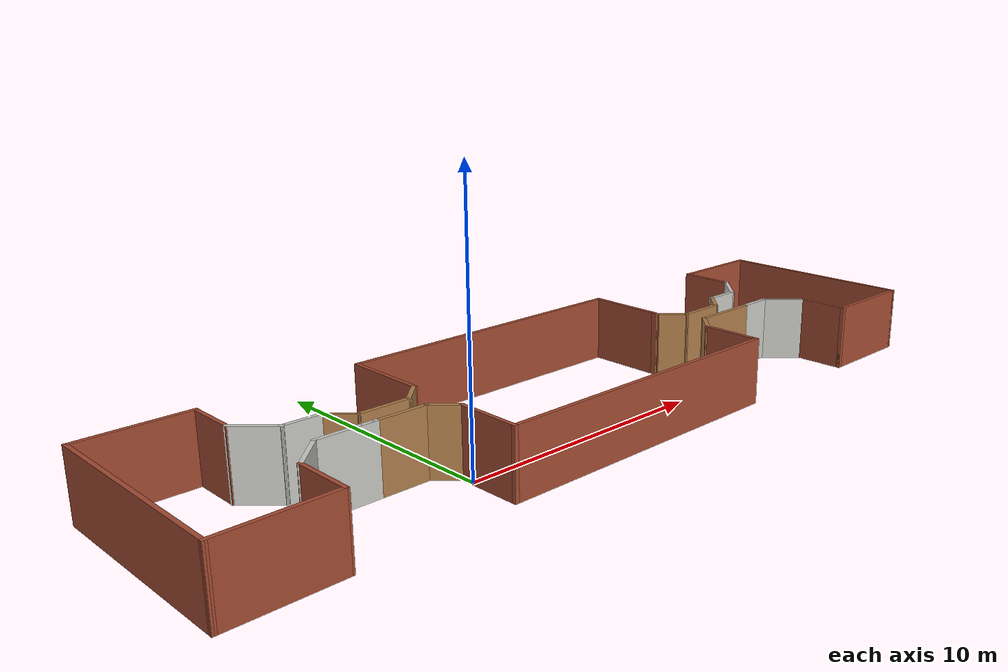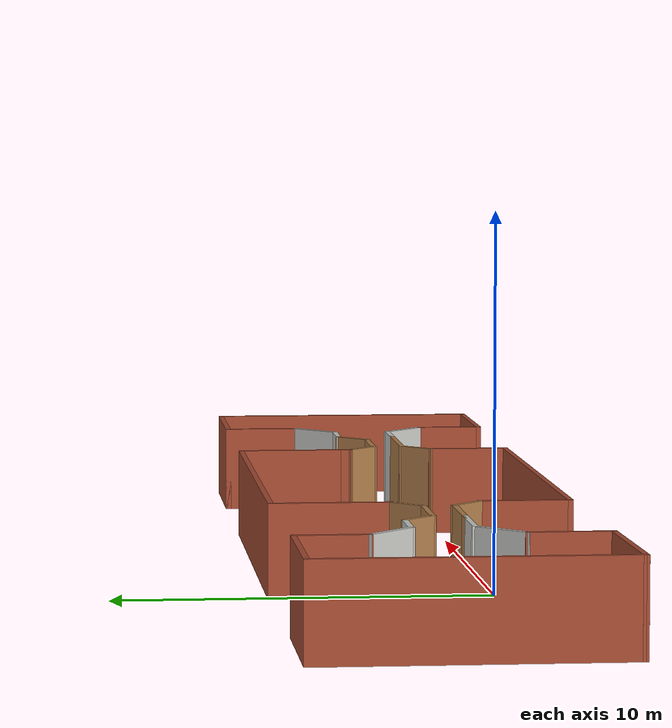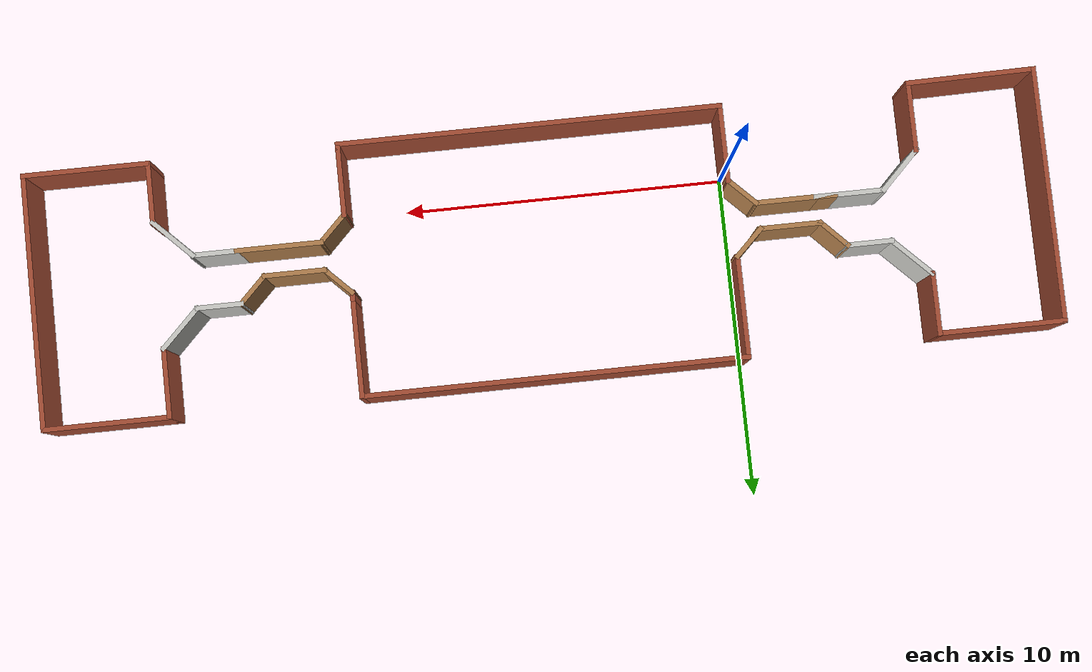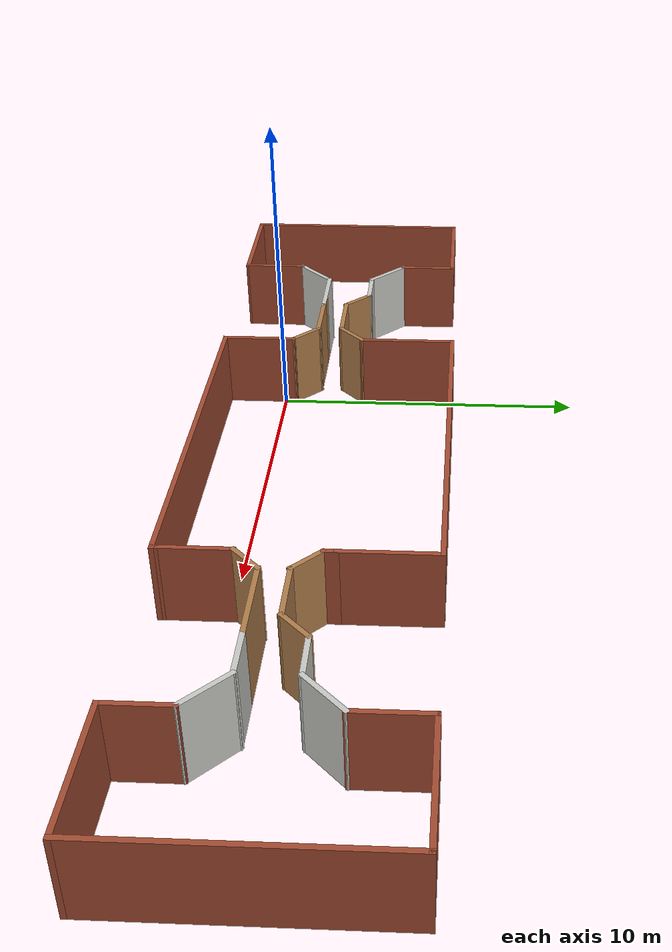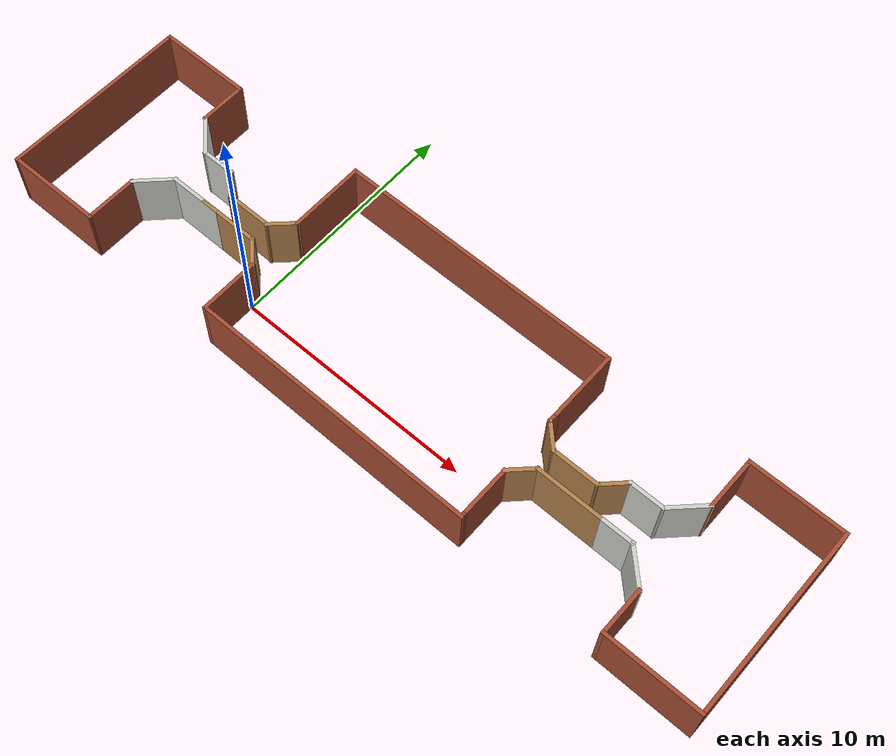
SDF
<?xml version='1.0'?>
<sdf version='1.6'>
  <model name='exp1.sdf'>
    <pose frame=''>5.84923 1.85896 0 0 -0 0</pose>
    <link name='Wall_0'>
      <collision name='Wall_0_Collision'>
        <geometry>
          <box>
            <size>8 0.15 2.5</size>
          </box>
        </geometry>
        <pose frame=''>0 0 1.25 0 -0 0</pose>
      </collision>
      <visual name='Wall_0_Visual'>
        <pose frame=''>0 0 1.25 0 -0 0</pose>
        <geometry>
          <box>
            <size>8 0.15 2.5</size>
          </box>
        </geometry>
        <material>
          <script>
            <uri>file://media/materials/scripts/gazebo.material</uri>
            <name>Gazebo/Bricks</name>
          </script>
          <ambient>1 1 1 1</ambient>
        </material>
        <meta>
          <layer>0</layer>
        </meta>
      </visual>
      <pose frame=''>-15.6615 -0.074523 0 0 -0 1.5708</pose>
    </link>
    <link name='Wall_1'>
      <collision name='Wall_1_Collision'>
        <geometry>
          <box>
            <size>4 0.15 2.5</size>
          </box>
        </geometry>
        <pose frame=''>0 0 1.25 0 -0 0</pose>
      </collision>
      <visual name='Wall_1_Visual'>
        <pose frame=''>0 0 1.25 0 -0 0</pose>
        <geometry>
          <box>
            <size>4 0.15 2.5</size>
          </box>
        </geometry>
        <material>
          <script>
            <uri>file://media/materials/scripts/gazebo.material</uri>
            <name>Gazebo/Bricks</name>
          </script>
          <ambient>1 1 1 1</ambient>
        </material>
        <meta>
          <layer>0</layer>
        </meta>
      </visual>
      <pose frame=''>-13.7365 3.85048 0 0 -0 0</pose>
    </link>
    <link name='Wall_10'>
      <collision name='Wall_10_Collision'>
        <geometry>
          <box>
            <size>3 0.15 2.5</size>
          </box>
        </geometry>
        <pose frame=''>0 0 1.25 0 -0 0</pose>
      </collision>
      <visual name='Wall_10_Visual'>
        <pose frame=''>0 0 1.25 0 -0 0</pose>
        <geometry>
          <box>
            <size>3 0.15 2.5</size>
          </box>
        </geometry>
        <material>
          <script>
            <uri>file://media/materials/scripts/gazebo.material</uri>
            <name>Gazebo/Bricks</name>
          </script>
          <ambient>1 1 1 1</ambient>
        </material>
        <meta>
          <layer>0</layer>
        </meta>
      </visual>
      <pose frame=''>5.92548 2.54411 0 0 0 -1.5708</pose>
    </link>
    <link name='Wall_11'>
      <collision name='Wall_11_Collision'>
        <geometry>
          <box>
            <size>0.5 0.15 2.5</size>
          </box>
        </geometry>
        <pose frame=''>0 0 1.25 0 -0 0</pose>
      </collision>
      <visual name='Wall_11_Visual'>
        <pose frame=''>0 0 1.25 0 -0 0</pose>
        <geometry>
          <box>
            <size>0.5 0.15 2.5</size>
          </box>
        </geometry>
        <material>
          <script>
            <uri>file://media/materials/scripts/gazebo.material</uri>
            <name>Gazebo/Bricks</name>
          </script>
          <ambient>1 1 1 1</ambient>
        </material>
        <meta>
          <layer>0</layer>
        </meta>
      </visual>
      <pose frame=''>5.92548 0.944106 0 0 0 -1.5708</pose>
    </link>
    <link name='Wall_12'>
      <collision name='Wall_12_Collision'>
        <geometry>
          <box>
            <size>1.25 0.15 2.5</size>
          </box>
        </geometry>
        <pose frame=''>0 0 1.25 0 -0 0</pose>
      </collision>
      <visual name='Wall_12_Visual'>
        <pose frame=''>0 0 1.25 0 -0 0</pose>
        <geometry>
          <box>
            <size>1.25 0.15 2.5</size>
          </box>
        </geometry>
        <material>
          <script>
            <uri>file://media/materials/scripts/gazebo.material</uri>
            <name>Gazebo/Wood</name>
          </script>
          <ambient>1 1 1 1</ambient>
        </material>
        <meta>
          <layer>0</layer>
        </meta>
      </visual>
      <pose frame=''>6.31439 0.380197 0 0 0 -0.785398</pose>
    </link>
    <link name='Wall_13'>
      <collision name='Wall_13_Collision'>
        <geometry>
          <box>
            <size>2 0.15 2.5</size>
          </box>
        </geometry>
        <pose frame=''>0 0 1.25 0 -0 0</pose>
      </collision>
      <visual name='Wall_13_Visual'>
        <pose frame=''>0 0 1.25 0 -0 0</pose>
        <geometry>
          <box>
            <size>2 0.15 2.5</size>
          </box>
        </geometry>
        <material>
          <script>
            <uri>file://media/materials/scripts/gazebo.material</uri>
            <name>Gazebo/Wood</name>
          </script>
          <ambient>1 1 1 1</ambient>
        </material>
        <meta>
          <layer>0</layer>
        </meta>
      </visual>
      <pose frame=''>7.62829 -0.008712 0 0 -0 0</pose>
    </link>
    <link name='Wall_14'>
      <collision name='Wall_14_Collision'>
        <geometry>
          <box>
            <size>1.25 0.15 2.5</size>
          </box>
        </geometry>
        <pose frame=''>0 0 1.25 0 -0 0</pose>
      </collision>
      <visual name='Wall_14_Visual'>
        <pose frame=''>0 0 1.25 0 -0 0</pose>
        <geometry>
          <box>
            <size>1.25 0.15 2.5</size>
          </box>
        </geometry>
        <material>
          <script>
            <uri>file://media/materials/scripts/gazebo.material</uri>
            <name>Gazebo/Wood</name>
          </script>
          <ambient>1 1 1 1</ambient>
        </material>
        <meta>
          <layer>0</layer>
        </meta>
      </visual>
      <pose frame=''>8.9422 0.380197 0 0 -0 0.785398</pose>
    </link>
    <link name='Wall_15'>
      <collision name='Wall_15_Collision'>
        <geometry>
          <box>
            <size>1.5 0.15 2.5</size>
          </box>
        </geometry>
        <pose frame=''>0 0 1.25 0 -0 0</pose>
      </collision>
      <visual name='Wall_15_Visual'>
        <pose frame=''>0 0 1.25 0 -0 0</pose>
        <geometry>
          <box>
            <size>1.5 0.15 2.5</size>
          </box>
        </geometry>
        <material>
          <script>
            <uri>file://media/materials/scripts/gazebo.material</uri>
            <name>Gazebo/CeilingTiled</name>
          </script>
          <ambient>1 1 1 1</ambient>
        </material>
        <meta>
          <layer>0</layer>
        </meta>
      </visual>
      <pose frame=''>10.0061 0.769106 0 0 -0 0</pose>
    </link>
    <link name='Wall_16'>
      <collision name='Wall_16_Collision'>
        <geometry>
          <box>
            <size>1.75 0.15 2.5</size>
          </box>
        </geometry>
        <pose frame=''>0 0 1.25 0 -0 0</pose>
      </collision>
      <visual name='Wall_16_Visual'>
        <pose frame=''>0 0 1.25 0 -0 0</pose>
        <geometry>
          <box>
            <size>1.75 0.15 2.5</size>
          </box>
        </geometry>
        <material>
          <script>
            <uri>file://media/materials/scripts/gazebo.material</uri>
            <name>Gazebo/CeilingTiled</name>
          </script>
          <ambient>1 1 1 1</ambient>
        </material>
        <meta>
          <layer>0</layer>
        </meta>
      </visual>
      <pose frame=''>11.2468 1.33479 0 0 -0 0.785398</pose>
    </link>
    <link name='Wall_17'>
      <collision name='Wall_17_Collision'>
        <geometry>
          <box>
            <size>2.25 0.15 2.5</size>
          </box>
        </geometry>
        <pose frame=''>0 0 1.25 0 -0 0</pose>
      </collision>
      <visual name='Wall_17_Visual'>
        <pose frame=''>0 0 1.25 0 -0 0</pose>
        <geometry>
          <box>
            <size>2.25 0.15 2.5</size>
          </box>
        </geometry>
        <material>
          <script>
            <uri>file://media/materials/scripts/gazebo.material</uri>
            <name>Gazebo/Bricks</name>
          </script>
          <ambient>1 1 1 1</ambient>
        </material>
        <meta>
          <layer>0</layer>
        </meta>
      </visual>
      <pose frame=''>11.8125 2.95048 0 0 -0 1.5708</pose>
    </link>
    <link name='Wall_18'>
      <collision name='Wall_18_Collision'>
        <geometry>
          <box>
            <size>4 0.15 2.5</size>
          </box>
        </geometry>
        <pose frame=''>0 0 1.25 0 -0 0</pose>
      </collision>
      <visual name='Wall_18_Visual'>
        <pose frame=''>0 0 1.25 0 -0 0</pose>
        <geometry>
          <box>
            <size>4 0.15 2.5</size>
          </box>
        </geometry>
        <material>
          <script>
            <uri>file://media/materials/scripts/gazebo.material</uri>
            <name>Gazebo/Bricks</name>
          </script>
          <ambient>1 1 1 1</ambient>
        </material>
        <meta>
          <layer>0</layer>
        </meta>
      </visual>
      <pose frame=''>13.7375 4.00048 0 0 -0 0</pose>
    </link>
    <link name='Wall_19'>
      <collision name='Wall_19_Collision'>
        <geometry>
          <box>
            <size>8 0.15 2.5</size>
          </box>
        </geometry>
        <pose frame=''>0 0 1.25 0 -0 0</pose>
      </collision>
      <visual name='Wall_19_Visual'>
        <pose frame=''>0 0 1.25 0 -0 0</pose>
        <geometry>
          <box>
            <size>8 0.15 2.5</size>
          </box>
        </geometry>
        <material>
          <script>
            <uri>file://media/materials/scripts/gazebo.material</uri>
            <name>Gazebo/Bricks</name>
          </script>
          <ambient>1 1 1 1</ambient>
        </material>
        <meta>
          <layer>0</layer>
        </meta>
      </visual>
      <pose frame=''>15.6625 0.075477 0 0 0 -1.5708</pose>
    </link>
    <link name='Wall_2'>
      <collision name='Wall_2_Collision'>
        <geometry>
          <box>
            <size>2 0.15 2.5</size>
          </box>
        </geometry>
        <pose frame=''>0 0 1.25 0 -0 0</pose>
      </collision>
      <visual name='Wall_2_Visual'>
        <pose frame=''>0 0 1.25 0 -0 0</pose>
        <geometry>
          <box>
            <size>2 0.15 2.5</size>
          </box>
        </geometry>
        <material>
          <script>
            <uri>file://media/materials/scripts/gazebo.material</uri>
            <name>Gazebo/Bricks</name>
          </script>
          <ambient>1 1 1 1</ambient>
        </material>
        <meta>
          <layer>0</layer>
        </meta>
      </visual>
      <pose frame=''>-11.8115 2.92548 0 0 0 -1.5708</pose>
    </link>
    <link name='Wall_20'>
      <collision name='Wall_20_Collision'>
        <geometry>
          <box>
            <size>4 0.15 2.5</size>
          </box>
        </geometry>
        <pose frame=''>0 0 1.25 0 -0 0</pose>
      </collision>
      <visual name='Wall_20_Visual'>
        <pose frame=''>0 0 1.25 0 -0 0</pose>
        <geometry>
          <box>
            <size>4 0.15 2.5</size>
          </box>
        </geometry>
        <material>
          <script>
            <uri>file://media/materials/scripts/gazebo.material</uri>
            <name>Gazebo/Bricks</name>
          </script>
          <ambient>1 1 1 1</ambient>
        </material>
        <meta>
          <layer>0</layer>
        </meta>
      </visual>
      <pose frame=''>13.7375 -3.84952 0 0 -0 3.14159</pose>
    </link>
    <link name='Wall_21'>
      <collision name='Wall_21_Collision'>
        <geometry>
          <box>
            <size>2 0.15 2.5</size>
          </box>
        </geometry>
        <pose frame=''>0 0 1.25 0 -0 0</pose>
      </collision>
      <visual name='Wall_21_Visual'>
        <pose frame=''>0 0 1.25 0 -0 0</pose>
        <geometry>
          <box>
            <size>2 0.15 2.5</size>
          </box>
        </geometry>
        <material>
          <script>
            <uri>file://media/materials/scripts/gazebo.material</uri>
            <name>Gazebo/Bricks</name>
          </script>
          <ambient>1 1 1 1</ambient>
        </material>
        <meta>
          <layer>0</layer>
        </meta>
      </visual>
      <pose frame=''>11.8125 -2.92452 0 0 -0 1.5708</pose>
    </link>
    <link name='Wall_22'>
      <collision name='Wall_22_Collision'>
        <geometry>
          <box>
            <size>1.75 0.15 2.5</size>
          </box>
        </geometry>
        <pose frame=''>0 0 1.25 0 -0 0</pose>
      </collision>
      <visual name='Wall_22_Visual'>
        <pose frame=''>0 0 1.25 0 -0 0</pose>
        <geometry>
          <box>
            <size>1.75 0.15 2.5</size>
          </box>
        </geometry>
        <material>
          <script>
            <uri>file://media/materials/scripts/gazebo.material</uri>
            <name>Gazebo/CeilingTiled</name>
          </script>
          <ambient>1 1 1 1</ambient>
        </material>
        <meta>
          <layer>0</layer>
        </meta>
      </visual>
      <pose frame=''>11.2468 -1.43384 0 0 -0 2.35619</pose>
    </link>
    <link name='Wall_23'>
      <collision name='Wall_23_Collision'>
        <geometry>
          <box>
            <size>1.5 0.15 2.5</size>
          </box>
        </geometry>
        <pose frame=''>0 0 1.25 0 -0 0</pose>
      </collision>
      <visual name='Wall_23_Visual'>
        <pose frame=''>0 0 1.25 0 -0 0</pose>
        <geometry>
          <box>
            <size>1.5 0.15 2.5</size>
          </box>
        </geometry>
        <material>
          <script>
            <uri>file://media/materials/scripts/gazebo.material</uri>
            <name>Gazebo/CeilingTiled</name>
          </script>
          <ambient>1 1 1 1</ambient>
        </material>
        <meta>
          <layer>0</layer>
        </meta>
      </visual>
      <pose frame=''>10.0061 -0.868152 0 0 -0 3.14159</pose>
    </link>
    <link name='Wall_24'>
      <collision name='Wall_24_Collision'>
        <geometry>
          <box>
            <size>2.75 0.15 2.5</size>
          </box>
        </geometry>
        <pose frame=''>0 0 1.25 0 -0 0</pose>
      </collision>
      <visual name='Wall_24_Visual'>
        <pose frame=''>0 0 1.25 0 -0 0</pose>
        <geometry>
          <box>
            <size>2.75 0.15 2.5</size>
          </box>
        </geometry>
        <material>
          <script>
            <uri>file://media/materials/scripts/gazebo.material</uri>
            <name>Gazebo/Wood</name>
          </script>
          <ambient>1 1 1 1</ambient>
        </material>
        <meta>
          <layer>0</layer>
        </meta>
      </visual>
      <pose frame=''>8.03111 -0.868152 0 0 -0 3.14159</pose>
    </link>
    <link name='Wall_25'>
      <collision name='Wall_25_Collision'>
        <geometry>
          <box>
            <size>1.25 0.15 2.5</size>
          </box>
        </geometry>
        <pose frame=''>0 0 1.25 0 -0 0</pose>
      </collision>
      <visual name='Wall_25_Visual'>
        <pose frame=''>0 0 1.25 0 -0 0</pose>
        <geometry>
          <box>
            <size>1.25 0.15 2.5</size>
          </box>
        </geometry>
        <material>
          <script>
            <uri>file://media/materials/scripts/gazebo.material</uri>
            <name>Gazebo/Wood</name>
          </script>
          <ambient>1 1 1 1</ambient>
        </material>
        <meta>
          <layer>0</layer>
        </meta>
      </visual>
      <pose frame=''>6.3422 -1.25706 0 0 0 -2.35619</pose>
    </link>
    <link name='Wall_26'>
      <collision name='Wall_26_Collision'>
        <geometry>
          <box>
            <size>2.25 0.15 2.5</size>
          </box>
        </geometry>
        <pose frame=''>0 0 1.25 0 -0 0</pose>
      </collision>
      <visual name='Wall_26_Visual'>
        <pose frame=''>0 0 1.25 0 -0 0</pose>
        <geometry>
          <box>
            <size>2.25 0.15 2.5</size>
          </box>
        </geometry>
        <material>
          <script>
            <uri>file://media/materials/scripts/gazebo.material</uri>
            <name>Gazebo/Bricks</name>
          </script>
          <ambient>1 1 1 1</ambient>
        </material>
        <meta>
          <layer>0</layer>
        </meta>
      </visual>
      <pose frame=''>5.95329 -2.69597 0 0 0 -1.5708</pose>
    </link>
    <link name='Wall_27'>
      <collision name='Wall_27_Collision'>
        <geometry>
          <box>
            <size>0.25 0.15 2.5</size>
          </box>
        </geometry>
        <pose frame=''>0 0 1.25 0 -0 0</pose>
      </collision>
      <visual name='Wall_27_Visual'>
        <pose frame=''>0 0 1.25 0 -0 0</pose>
        <geometry>
          <box>
            <size>0.25 0.15 2.5</size>
          </box>
        </geometry>
        <material>
          <script>
            <uri>file://media/materials/scripts/gazebo.material</uri>
            <name>Gazebo/Bricks</name>
          </script>
          <ambient>1 1 1 1</ambient>
        </material>
        <meta>
          <layer>0</layer>
        </meta>
      </visual>
      <pose frame=''>5.95329 -3.79597 0 0 0 -1.5708</pose>
    </link>
    <link name='Wall_28'>
      <collision name='Wall_28_Collision'>
        <geometry>
          <box>
            <size>12 0.15 2.5</size>
          </box>
        </geometry>
        <pose frame=''>0 0 1.25 0 -0 0</pose>
      </collision>
      <visual name='Wall_28_Visual'>
        <pose frame=''>0 0 1.25 0 -0 0</pose>
        <geometry>
          <box>
            <size>12 0.15 2.5</size>
          </box>
        </geometry>
        <material>
          <script>
            <uri>file://media/materials/scripts/gazebo.material</uri>
            <name>Gazebo/Bricks</name>
          </script>
          <ambient>1 1 1 1</ambient>
        </material>
        <meta>
          <layer>0</layer>
        </meta>
      </visual>
      <pose frame=''>0.028295 -3.84597 0 0 -0 3.14159</pose>
    </link>
    <link name='Wall_29'>
      <collision name='Wall_29_Collision'>
        <geometry>
          <box>
            <size>2.5 0.15 2.5</size>
          </box>
        </geometry>
        <pose frame=''>0 0 1.25 0 -0 0</pose>
      </collision>
      <visual name='Wall_29_Visual'>
        <pose frame=''>0 0 1.25 0 -0 0</pose>
        <geometry>
          <box>
            <size>2.5 0.15 2.5</size>
          </box>
        </geometry>
        <material>
          <script>
            <uri>file://media/materials/scripts/gazebo.material</uri>
            <name>Gazebo/Bricks</name>
          </script>
          <ambient>1 1 1 1</ambient>
        </material>
        <meta>
          <layer>0</layer>
        </meta>
      </visual>
      <pose frame=''>-5.8967 -2.67097 0 0 -0 1.5708</pose>
    </link>
    <link name='Wall_3'>
      <collision name='Wall_3_Collision'>
        <geometry>
          <box>
            <size>1.75 0.15 2.5</size>
          </box>
        </geometry>
        <pose frame=''>0 0 1.25 0 -0 0</pose>
      </collision>
      <visual name='Wall_3_Visual'>
        <pose frame=''>0 0 1.25 0 -0 0</pose>
        <geometry>
          <box>
            <size>1.75 0.15 2.5</size>
          </box>
        </geometry>
        <material>
          <script>
            <uri>file://media/materials/scripts/gazebo.material</uri>
            <name>Gazebo/CeilingTiled</name>
          </script>
          <ambient>1 1 1 1</ambient>
        </material>
        <meta>
          <layer>0</layer>
        </meta>
      </visual>
      <pose frame=''>-11.2458 1.43479 0 0 0 -0.785398</pose>
    </link>
    <link name='Wall_30'>
      <collision name='Wall_30_Collision'>
        <geometry>
          <box>
            <size>1.25 0.15 2.5</size>
          </box>
        </geometry>
        <pose frame=''>0 0 1.25 0 -0 0</pose>
      </collision>
      <visual name='Wall_30_Visual'>
        <pose frame=''>0 0 1.25 0 -0 0</pose>
        <geometry>
          <box>
            <size>1.25 0.15 2.5</size>
          </box>
        </geometry>
        <material>
          <script>
            <uri>file://media/materials/scripts/gazebo.material</uri>
            <name>Gazebo/Wood</name>
          </script>
          <ambient>1 1 1 1</ambient>
        </material>
        <meta>
          <layer>0</layer>
        </meta>
      </visual>
      <pose frame=''>-6.28561 -1.10706 0 0 -0 2.35619</pose>
    </link>
    <link name='Wall_31'>
      <collision name='Wall_31_Collision'>
        <geometry>
          <box>
            <size>2 0.15 2.5</size>
          </box>
        </geometry>
        <pose frame=''>0 0 1.25 0 -0 0</pose>
      </collision>
      <visual name='Wall_31_Visual'>
        <pose frame=''>0 0 1.25 0 -0 0</pose>
        <geometry>
          <box>
            <size>2 0.15 2.5</size>
          </box>
        </geometry>
        <material>
          <script>
            <uri>file://media/materials/scripts/gazebo.material</uri>
            <name>Gazebo/Wood</name>
          </script>
          <ambient>1 1 1 1</ambient>
        </material>
        <meta>
          <layer>0</layer>
        </meta>
      </visual>
      <pose frame=''>-7.59952 -0.718152 0 0 -0 3.14159</pose>
    </link>
    <link name='Wall_32'>
      <collision name='Wall_32_Collision'>
        <geometry>
          <box>
            <size>2.25 0.15 2.5</size>
          </box>
        </geometry>
        <pose frame=''>0 0 1.25 0 -0 0</pose>
      </collision>
      <visual name='Wall_32_Visual'>
        <pose frame=''>0 0 1.25 0 -0 0</pose>
        <geometry>
          <box>
            <size>2.25 0.15 2.5</size>
          </box>
        </geometry>
        <material>
          <script>
            <uri>file://media/materials/scripts/gazebo.material</uri>
            <name>Gazebo/CeilingTiled</name>
          </script>
          <ambient>1 1 1 1</ambient>
        </material>
        <meta>
          <layer>0</layer>
        </meta>
      </visual>
      <pose frame=''>-9.57452 -0.718152 0 0 -0 3.14159</pose>
    </link>
    <link name='Wall_33'>
      <collision name='Wall_33_Collision'>
        <geometry>
          <box>
            <size>1.75 0.15 2.5</size>
          </box>
        </geometry>
        <pose frame=''>0 0 1.25 0 -0 0</pose>
      </collision>
      <visual name='Wall_33_Visual'>
        <pose frame=''>0 0 1.25 0 -0 0</pose>
        <geometry>
          <box>
            <size>1.75 0.15 2.5</size>
          </box>
        </geometry>
        <material>
          <script>
            <uri>file://media/materials/scripts/gazebo.material</uri>
            <name>Gazebo/CeilingTiled</name>
          </script>
          <ambient>1 1 1 1</ambient>
        </material>
        <meta>
          <layer>0</layer>
        </meta>
      </visual>
      <pose frame=''>-11.1902 -1.28384 0 0 0 -2.35619</pose>
    </link>
    <link name='Wall_34'>
      <collision name='Wall_34_Collision'>
        <geometry>
          <box>
            <size>2.25 0.15 2.5</size>
          </box>
        </geometry>
        <pose frame=''>0 0 1.25 0 -0 0</pose>
      </collision>
      <visual name='Wall_34_Visual'>
        <pose frame=''>0 0 1.25 0 -0 0</pose>
        <geometry>
          <box>
            <size>2.25 0.15 2.5</size>
          </box>
        </geometry>
        <material>
          <script>
            <uri>file://media/materials/scripts/gazebo.material</uri>
            <name>Gazebo/Bricks</name>
          </script>
          <ambient>1 1 1 1</ambient>
        </material>
        <meta>
          <layer>0</layer>
        </meta>
      </visual>
      <pose frame=''>-11.7559 -2.89952 0 0 0 -1.5708</pose>
    </link>
    <link name='Wall_35'>
      <collision name='Wall_35_Collision'>
        <geometry>
          <box>
            <size>4.05595 0.15 2.5</size>
          </box>
        </geometry>
        <pose frame=''>0 0 1.25 0 -0 0</pose>
      </collision>
      <visual name='Wall_35_Visual'>
        <pose frame=''>0 0 1.25 0 -0 0</pose>
        <geometry>
          <box>
            <size>4.05595 0.15 2.5</size>
          </box>
        </geometry>
        <material>
          <script>
            <uri>file://media/materials/scripts/gazebo.material</uri>
            <name>Gazebo/Bricks</name>
          </script>
          <ambient>1 1 1 1</ambient>
        </material>
        <meta>
          <layer>0</layer>
        </meta>
      </visual>
      <pose frame=''>-13.7087 -3.97452 0 0 0 -3.12879</pose>
    </link>
    <link name='Wall_38'>
      <collision name='Wall_38_Collision'>
        <geometry>
          <box>
            <size>0.75 0.15 2.5</size>
          </box>
        </geometry>
        <pose frame=''>0 0 1.25 0 -0 0</pose>
      </collision>
      <visual name='Wall_38_Visual'>
        <pose frame=''>0 0 1.25 0 -0 0</pose>
        <geometry>
          <box>
            <size>0.75 0.15 2.5</size>
          </box>
        </geometry>
        <material>
          <script>
            <uri>file://media/materials/scripts/gazebo.material</uri>
            <name>Gazebo/Wood</name>
          </script>
          <ambient>1 1 1 1</ambient>
        </material>
        <meta>
          <layer>0</layer>
        </meta>
      </visual>
      <pose frame=''>-8.82452 -0.718152 0 0 -0 3.14159</pose>
    </link>
    <link name='Wall_4'>
      <collision name='Wall_4_Collision'>
        <geometry>
          <box>
            <size>1.5 0.15 2.5</size>
          </box>
        </geometry>
        <pose frame=''>0 0 1.25 0 -0 0</pose>
      </collision>
      <visual name='Wall_4_Visual'>
        <pose frame=''>0 0 1.25 0 -0 0</pose>
        <geometry>
          <box>
            <size>1.5 0.15 2.5</size>
          </box>
        </geometry>
        <material>
          <script>
            <uri>file://media/materials/scripts/gazebo.material</uri>
            <name>Gazebo/CeilingTiled</name>
          </script>
          <ambient>1 1 1 1</ambient>
        </material>
        <meta>
          <layer>0</layer>
        </meta>
      </visual>
      <pose frame=''>-10.0052 0.869106 0 0 -0 0</pose>
    </link>
    <link name='Wall_5'>
      <collision name='Wall_5_Collision'>
        <geometry>
          <box>
            <size>1.23386 0.15 2.5</size>
          </box>
        </geometry>
        <pose frame=''>0 0 1.25 0 -0 0</pose>
      </collision>
      <visual name='Wall_5_Visual'>
        <pose frame=''>0 0 1.25 0 -0 0</pose>
        <geometry>
          <box>
            <size>1.23386 0.15 2.5</size>
          </box>
        </geometry>
        <material>
          <script>
            <uri>file://media/materials/scripts/gazebo.material</uri>
            <name>Gazebo/Wood</name>
          </script>
          <ambient>1 1 1 1</ambient>
        </material>
        <meta>
          <layer>0</layer>
        </meta>
      </visual>
      <pose frame=''>-8.95275 0.480197 0 0 0 -0.800404</pose>
    </link>
    <link name='Wall_6'>
      <collision name='Wall_6_Collision'>
        <geometry>
          <box>
            <size>2 0.15 2.5</size>
          </box>
        </geometry>
        <pose frame=''>0 0 1.25 0 -0 0</pose>
      </collision>
      <visual name='Wall_6_Visual'>
        <pose frame=''>0 0 1.25 0 -0 0</pose>
        <geometry>
          <box>
            <size>2 0.15 2.5</size>
          </box>
        </geometry>
        <material>
          <script>
            <uri>file://media/materials/scripts/gazebo.material</uri>
            <name>Gazebo/Wood</name>
          </script>
          <ambient>1 1 1 1</ambient>
        </material>
        <meta>
          <layer>0</layer>
        </meta>
      </visual>
      <pose frame=''>-7.63884 0.091288 0 0 -0 0</pose>
    </link>
    <link name='Wall_7'>
      <collision name='Wall_7_Collision'>
        <geometry>
          <box>
            <size>1.26638 0.15 2.5</size>
          </box>
        </geometry>
        <pose frame=''>0 0 1.25 0 -0 0</pose>
      </collision>
      <visual name='Wall_7_Visual'>
        <pose frame=''>0 0 1.25 0 -0 0</pose>
        <geometry>
          <box>
            <size>1.26638 0.15 2.5</size>
          </box>
        </geometry>
        <material>
          <script>
            <uri>file://media/materials/scripts/gazebo.material</uri>
            <name>Gazebo/Wood</name>
          </script>
          <ambient>1 1 1 1</ambient>
        </material>
        <meta>
          <layer>0</layer>
        </meta>
      </visual>
      <pose frame=''>-6.32493 0.480197 0 0 -0 0.77083</pose>
    </link>
    <link name='Wall_8'>
      <collision name='Wall_8_Collision'>
        <geometry>
          <box>
            <size>3.25 0.15 2.5</size>
          </box>
        </geometry>
        <pose frame=''>0 0 1.25 0 -0 0</pose>
      </collision>
      <visual name='Wall_8_Visual'>
        <pose frame=''>0 0 1.25 0 -0 0</pose>
        <geometry>
          <box>
            <size>3.25 0.15 2.5</size>
          </box>
        </geometry>
        <material>
          <script>
            <uri>file://media/materials/scripts/gazebo.material</uri>
            <name>Gazebo/Bricks</name>
          </script>
          <ambient>1 1 1 1</ambient>
        </material>
        <meta>
          <layer>0</layer>
        </meta>
      </visual>
      <pose frame=''>-5.92452 2.41911 0 0 -0 1.5708</pose>
    </link>
    <link name='Wall_9'>
      <collision name='Wall_9_Collision'>
        <geometry>
          <box>
            <size>12 0.15 2.5</size>
          </box>
        </geometry>
        <pose frame=''>0 0 1.25 0 -0 0</pose>
      </collision>
      <visual name='Wall_9_Visual'>
        <pose frame=''>0 0 1.25 0 -0 0</pose>
        <geometry>
          <box>
            <size>12 0.15 2.5</size>
          </box>
        </geometry>
        <material>
          <script>
            <uri>file://media/materials/scripts/gazebo.material</uri>
            <name>Gazebo/Bricks</name>
          </script>
          <ambient>1 1 1 1</ambient>
        </material>
        <meta>
          <layer>0</layer>
        </meta>
      </visual>
      <pose frame=''>0.000477 3.96911 0 0 -0 0</pose>
    </link>
    <static>1</static>
  </model>
</sdf>
